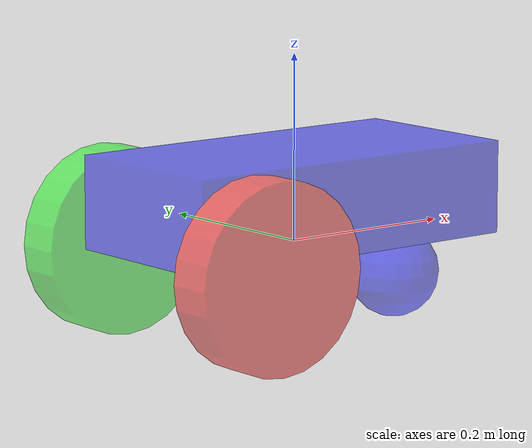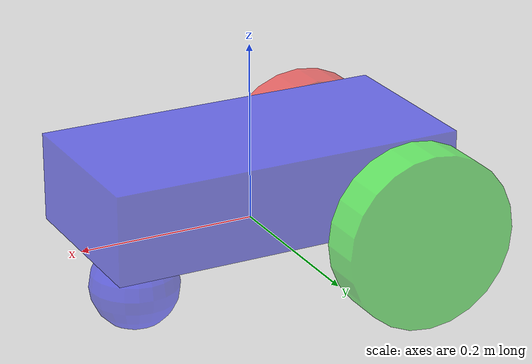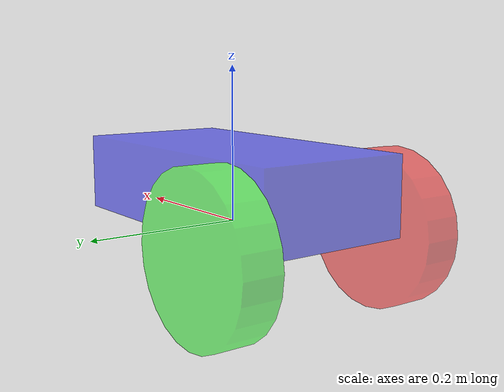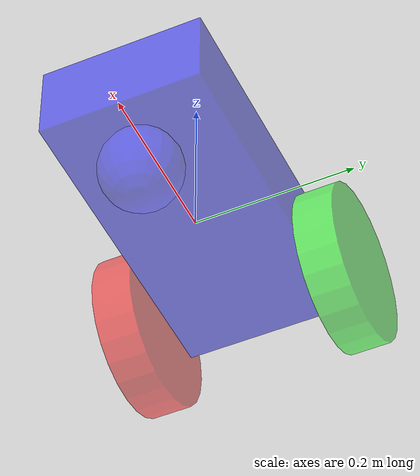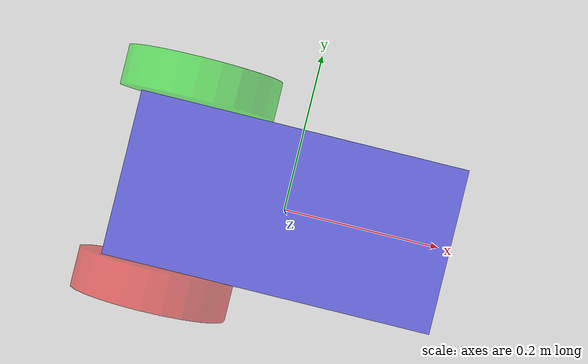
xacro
<?xml version="1.0"?>
<robot name="car_robot" xmlns:xacro="http://www.ros.org/wiki/xacro">

  <!-- Numerical Macros - units are meters and radians -->
  <xacro:property name="wheel_separation" value="0.26" />
  <xacro:property name="wheel_radius" value="0.100" />
  <xacro:property name="wheel_width"  value="0.050" />
  <xacro:property name="body_height"  value="0.100" />
  <xacro:property name="body_width"   value="0.200" />
  <xacro:property name="body_length"  value="0.400" />
  <xacro:property name="body_mass"  value="0.1" />
  <xacro:property name="wheel_mass"  value="0.05" />

   <link name="car_body">

    <visual>
      <origin xyz="0 0 ${0.5*body_height}" rpy="0 0 0" />
      <geometry>
        <box size="${body_length} ${body_width} ${body_height}" />
      </geometry>
      <material name="Blue">
      	<color rgba="0 0.0 1.0 0.5" />
      </material>
    </visual>

    <collision>
      <origin xyz="0 0 ${0.5*body_height}" rpy="0 0 0" />
      <geometry>
        <box size="${body_length} ${body_width} ${body_height}" />
      </geometry>
    </collision>

    <inertial>
      <origin xyz="0 0 0" rpy="0 0 0"/>
      <mass value="${body_mass}"/>
      <inertia ixx="${body_mass*(body_height*body_height+body_width*body_width)/12}"
        ixy="0"
        ixz="0"
        iyy="${body_mass*(body_height*body_height+body_length*body_length)/12}"
        iyz="0"
        izz="${body_mass*(body_length*body_length+body_width*body_width)/12}"/>
    </inertial>
   </link>

   <link name="wheelR">

    <visual>
      <origin xyz="0 0 0" rpy="1.57079 0 0" />
      <geometry>
        <cylinder length="${wheel_width}" radius="${wheel_radius}" />
      </geometry>
      <material name="Green">
      	<color rgba="0.0 1.0 0.0 0.5" />
      </material>
    </visual>

    <collision>
      <origin xyz="0 0 0" rpy="1.57079 0 0" />
      <geometry>
        <cylinder length="${wheel_width}" radius="${wheel_radius}" />
      </geometry>
    </collision>

    <inertial>
      <origin xyz="0 0 0" rpy="1.57079 0 0"/>
      <mass value="${wheel_mass}"/>
      <inertia ixx="${wheel_mass*(3*wheel_radius*wheel_radius+wheel_width*wheel_width)/12}"
        ixy="0"
        ixz="0"
        iyy="${wheel_mass*(3*wheel_radius*wheel_radius+wheel_width*wheel_width)/12}"
        iyz="0"
        izz="${wheel_mass*wheel_radius*wheel_radius/2}"/>
      </inertial>
   </link>

   <link name="wheelL">

    <visual>
      <origin xyz="0 0 0" rpy="1.57079 0 0" />
      <geometry>
        <cylinder length="${wheel_width}" radius="${wheel_radius}" />
      </geometry>
      <material name="Red">
      	<color rgba="1 0 0 0.5" />
      </material>
    </visual>

    <collision>
      <origin xyz="0 0 0" rpy="1.57079 0 0" />
      <geometry>
        <cylinder length="${wheel_width}" radius="${wheel_radius}" />
      </geometry>
    </collision>

    <inertial>
      <origin xyz="0 0 0" rpy="1.57079 0 0"/>
      <mass value="${wheel_mass}"/>
      <inertia ixx="${wheel_mass*(3*wheel_radius*wheel_radius+wheel_width*wheel_width)/12}"
        ixy="0"
        ixz="0"
        iyy="${wheel_mass*(3*wheel_radius*wheel_radius+wheel_width*wheel_width)/12}"
        iyz="0"
        izz="${wheel_mass*wheel_radius*wheel_radius/2}"/>
    </inertial>
   </link>

   <link name="suport">

    <visual>
      <origin xyz="0 0 ${-0.5 * wheel_radius}" rpy="0 0 0" />
      <geometry>
        <sphere radius="${0.5 * wheel_radius}" />
      </geometry>
      <material name="Blue">
      	<color rgba="0 0.0 1.0 0.5" />
      </material>
    </visual>

    <collision>
      <origin xyz="0 0 ${-0.5 * wheel_radius}" rpy="0 0 0" />
      <geometry>
        <sphere radius="${0.5 * wheel_radius}" />
      </geometry>
    </collision>

    <inertial>
      <origin xyz="0 0 ${-0.5 * wheel_radius}" rpy="0 0 0"/>
      <mass value="0.05"/>
      <inertia ixx="6.0e-4" ixy="0" ixz="0" iyy="6.0e-4" iyz="0" izz="6.0e-4"/>
    </inertial>
   </link>

   <!-- Joints -->
   <joint name="jointL" type="continuous">
    <parent link="car_body" />
    <child link="wheelL" />
    <origin xyz="${-body_length * 0.35} ${-wheel_separation * 0.5} 0" rpy="0 0 0" />
    <axis xyz="0 1 0" />
    <dynamics friction="0.0"/>
   </joint>

   <joint name="jointR" type="continuous">
    <parent link="car_body" />
    <child link="wheelR" />
    <origin xyz="${-body_length * 0.35} ${+wheel_separation * 0.5} 0" rpy="0 0 0" />
    <dynamics friction="0.0"/>
    <axis xyz="0 1 0" />
   </joint>

   <joint name="jointS" type="fixed">
    <parent link="car_body" />
    <child link="suport" />
    <origin xyz="${body_length * 0.35} 0 0" rpy="0 0 0" />
    <dynamics friction="0.0"/>
   </joint>

  <gazebo reference="car_body">
   <material>Gazebo/Blue</material>
   <mu1>0.001</mu1>
   <mu2>0.001</mu2>
 </gazebo>
 <gazebo reference="wheelR">
   <material>Gazebo/Green</material>
   <mu1>100.0</mu1>
   <mu2>10.0</mu2>
   <kp>100000.0</kp>
   <kd>1.0</kd>
   <minDepth>0.001</minDepth>
 </gazebo>
 <gazebo reference="wheelL">
   <material>Gazebo/Red</material>
   <mu1>100.0</mu1>
   <mu2>10.0</mu2>
   <kp>100000.0</kp>
   <kd>1.0</kd>
   <minDepth>0.001</minDepth>
 </gazebo>
  <gazebo reference="support">
   <material>Gazebo/Blue</material>
   <mu1>0.001</mu1>
   <mu2>0.001</mu2>
  </gazebo>

  <gazebo>
    <plugin name="differential_drive_controller" filename="libgazebo_ros_diff_drive.so">
      <alwaysOn>true</alwaysOn>
      <updateRate>100</updateRate>
      <leftJoint>jointL</leftJoint>
      <rightJoint>jointR</rightJoint>
      <wheelSeparation>${wheel_separation}</wheelSeparation>
      <wheelDiameter>${wheel_radius * 2}</wheelDiameter>
      <torque>20</torque>
      <commandTopic>cmd_vel</commandTopic>
      <odometryTopic>odom</odometryTopic>
      <odometryFrame>odom</odometryFrame>
      <robotBaseFrame>base_footprint</robotBaseFrame>
    </plugin>

    <plugin name="p3d_base_controller" filename="libgazebo_ros_p3d.so">
      <alwaysOn>true</alwaysOn>
      <updateRate>100.0</updateRate>
      <bodyName>car_body</bodyName>
      <topicName>ground_truth/state</topicName>
      <frameName>world</frameName>
      <xyzOffsets>${-body_length * 0.35} 0 0</xyzOffsets>
      <rpyOffsets>0 0 0</rpyOffsets>
    </plugin>
  </gazebo>

</robot>
